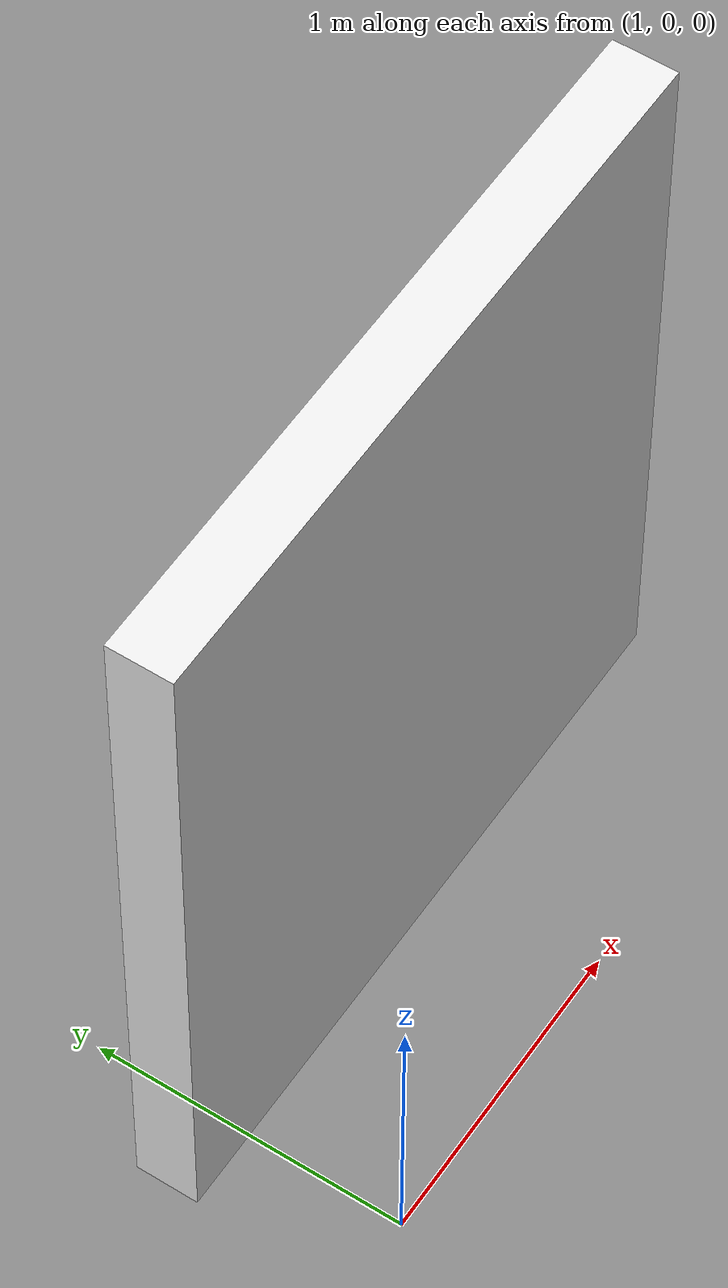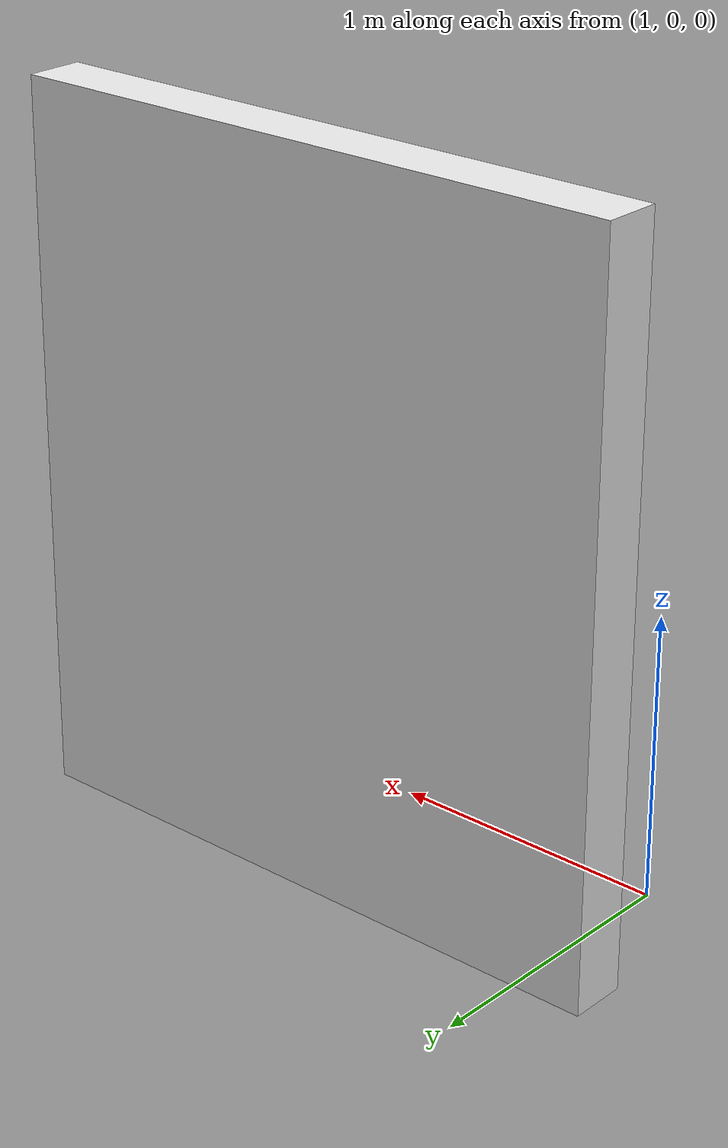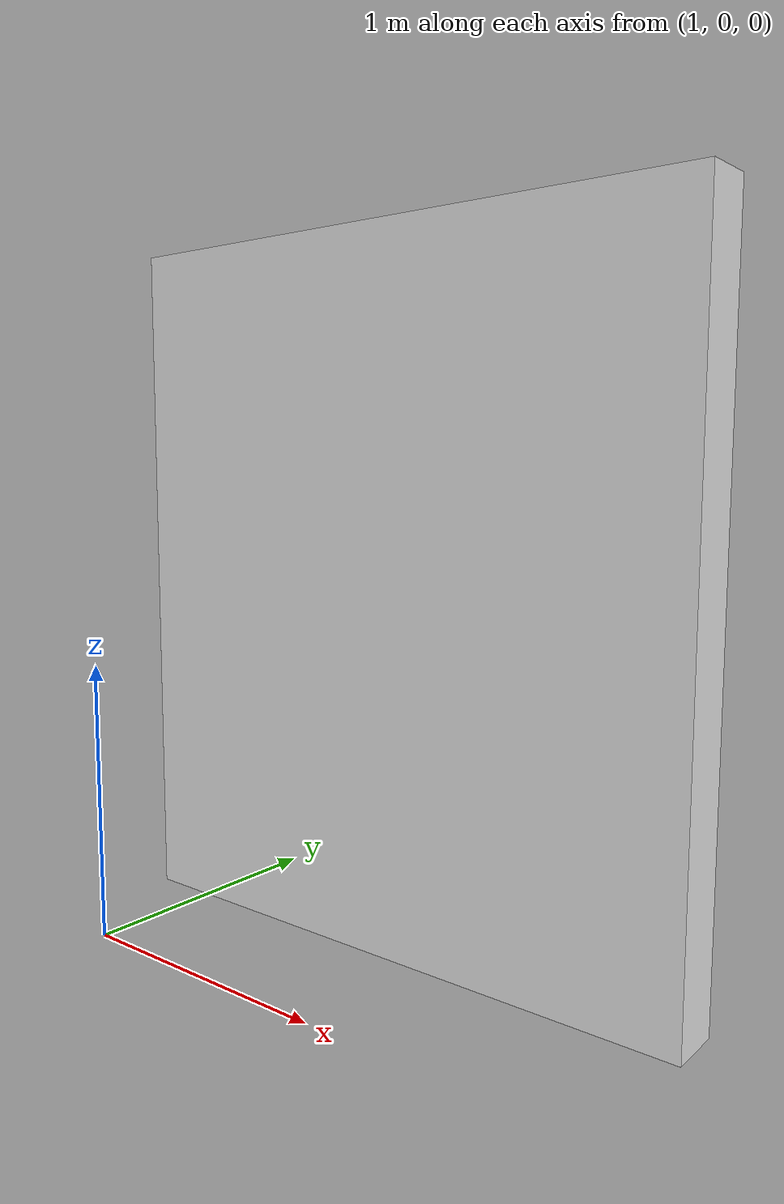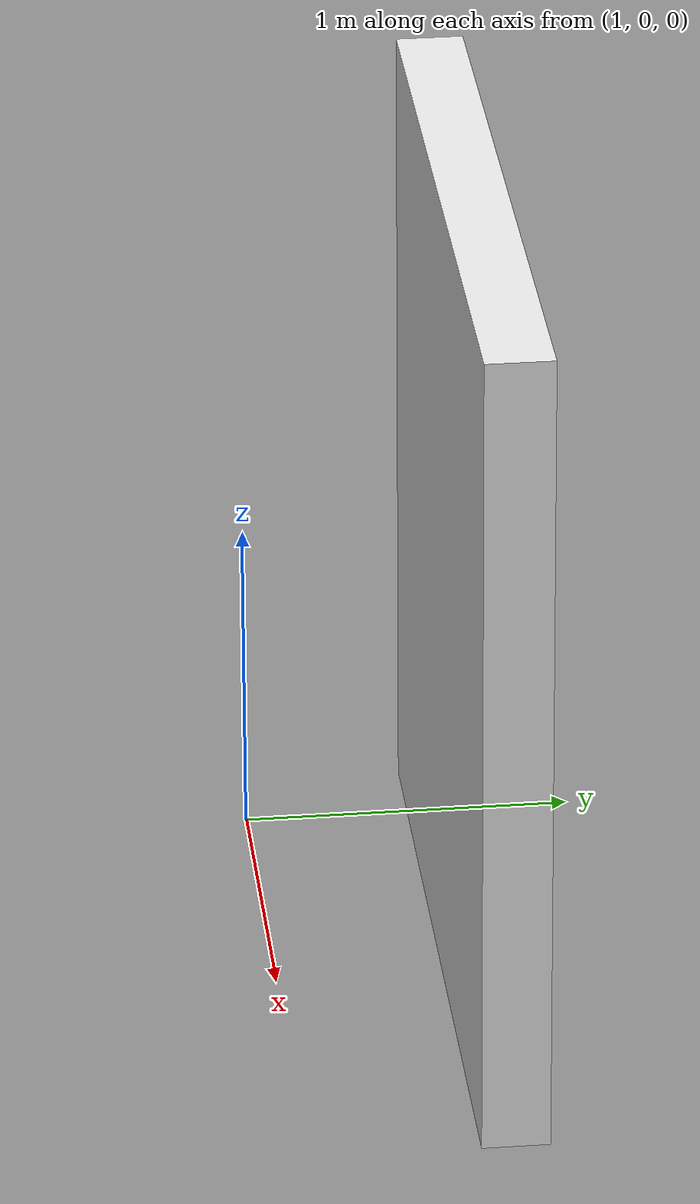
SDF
<?xml version='1.0'?>
<sdf version='1.4'>
  <model name='inside_hallway'>
    <link name='Wall'>
      <collision name='Wall'>
        <geometry>
          <box>
            <size>2.25 0.2 2.5</size>
          </box>
        </geometry>
        <pose>0 0 1.25 0 -0 0</pose>
      </collision>
      <visual name='Wall'>
        <pose>0 0 1.25 0 0 0</pose>
        <geometry>
          <box>
            <size>2.25 0.2 2.5</size>
          </box>
        </geometry>
        <material>
          <script>
            <uri>file://media/materials/scripts/gazebo.material</uri>
            <name>Gazebo/White</name>
          </script>
        </material>
      </visual>
      <velocity_decay>
        <linear>0</linear>
        <angular>0</angular>
      </velocity_decay>
      <pose>1.875 0.6 0 0 0 0 </pose>
    </link>
    <static>1</static>
  </model>
</sdf>
